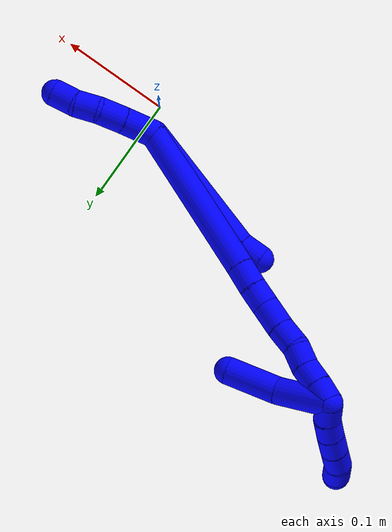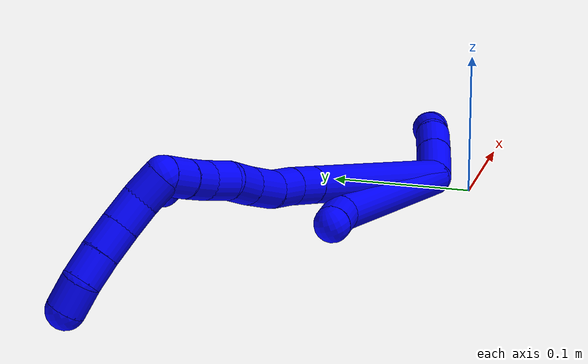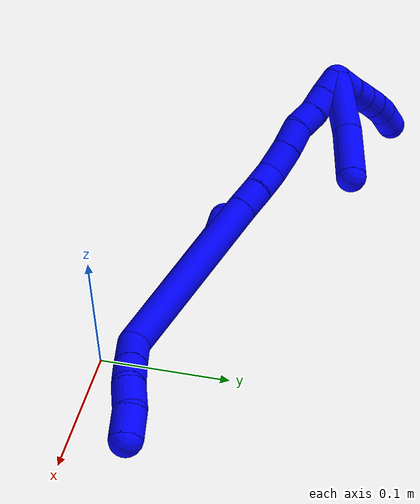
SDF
<sdf version="1.7">
 <world name="default">
  <model name="photoneo_s_sensor">
   <static>1</static>
   <pose>0 0 2 1.57079 1.57079 3.14159</pose>
   <link name="link">
    <inertial><mass>0.1</mass></inertial>
    <sensor name="sensor" type="depth">
     <update_rate>30</update_rate>
     <camera>
      <horizontal_fov>1.22</horizontal_fov>
      <image><width>1920</width><height>1200</height><format>B8G8R8</format></image>
      <clip><near>0.1</near><far>4</far></clip>
      <depth_camera><output>points</output></depth_camera>
     </camera>
     <plugin name="camera_plugin" filename="libgazebo_ros_depth_camera.so">
      <baseline>0.2</baseline>
      <alwaysOn>1</alwaysOn>
      <updateRate>0.0</updateRate>
      <cameraName>camera_ir</cameraName>
      <imageTopicName>/camera/color/image_raw</imageTopicName>
      <cameraInfoTopicName>/camera/color/camera_info</cameraInfoTopicName>
      <depthImageTopicName>/camera/depth/image_raw</depthImageTopicName>
      <depthImageCameraInfoTopicName>/camera/depth/camera_info</depthImageCameraInfoTopicName>
      <pointCloudTopicName>/camera/depth/points</pointCloudTopicName>
      <frameName>fr_optical</frameName>
      <pointCloudCutoff>0.1</pointCloudCutoff>
      <pointCloudCutoffMax>2.0</pointCloudCutoffMax>
      <distortionK1>0</distortionK1>
      <distortionK2>0</distortionK2>
      <distortionK3>0</distortionK3>
      <distortionT1>0</distortionT1>
      <distortionT2>0</distortionT2>
      <CxPrime>0</CxPrime>
      <Cx>0</Cx>
      <Cy>0</Cy>
      <focalLength>0</focalLength>
      <hackBaseline>0</hackBaseline>
     </plugin>
    </sensor>
   </link>
  </model>
  <model name="bin">
   <static>1</static>
   <link name="bottom">
    <collision name="collision-bottom">
     <pose>0 0 -0.01 0 -0 0</pose>
     <geometry><box><size>0.8 0.6 0.02</size></box></geometry>
     <surface>
      <friction><ode><mu>100</mu><mu2>100</mu2></ode></friction>
      <contact><collide_bitmask>65535</collide_bitmask></contact>
     </surface>
    </collision>
   </link>
   <link name="west_wall">
    <collision name="collision-west_wall">
     <pose>-0.41 0 0.1 0 -0 0</pose>
     <geometry><box><size>0.02 0.6 0.2</size></box></geometry>
     <surface>
      <friction><ode><mu>100</mu><mu2>100</mu2></ode></friction>
      <contact><collide_bitmask>65535</collide_bitmask></contact>
     </surface>
    </collision>
   </link>
   <link name="east_wall">
    <collision name="collision-east_wall">
     <pose>0.41 0 0.1 0 -0 0</pose>
     <geometry><box><size>0.02 0.6 0.2</size></box></geometry>
     <surface>
      <friction><ode><mu>100</mu><mu2>100</mu2></ode></friction>
      <contact><collide_bitmask>65535</collide_bitmask></contact>
     </surface>
    </collision>
   </link>
   <link name="south_wall">
    <collision name="collision-south_wall">
     <pose>0 -0.31 0.1 0 -0 0</pose>
     <geometry><box><size>0.8 0.02 0.2</size></box></geometry>
     <surface>
      <friction><ode><mu>100</mu><mu2>100</mu2></ode></friction>
      <contact><collide_bitmask>65535</collide_bitmask></contact>
     </surface>
    </collision>
   </link>
   <link name="north_wall">
    <collision name="collision-north_wall">
     <pose>0 0.31 0.1 0 -0 0</pose>
     <geometry><box><size>0.8 0.02 0.2</size></box></geometry>
     <surface>
      <friction><ode><mu>100</mu><mu2>100</mu2></ode></friction>
      <contact><collide_bitmask>65535</collide_bitmask></contact>
     </surface>
    </collision>
   </link>
  </model>
  <model name="1">
   <static>0</static>
   <link name="1">
    <collision name="collision-cylinder-e_1_2_8">
     <pose>-0.05623 0.02482 0.018319 -0.934977 -1.06902 0.580792</pose>
     <geometry><cylinder><radius>0.0125</radius><length>0.128271</length></cylinder></geometry>
     <surface>
      <friction><ode><mu>1.16</mu><mu2>1.16</mu2><slip1>0</slip1><slip2>0</slip2></ode></friction>
      <contact><ode><kp>1e+06</kp><kd>1</kd><max_vel>0</max_vel><min_depth>0.001</min_depth></ode></contact>
     </surface>
    </collision>
    <visual name="visual-cylinder-e_1_2_8">
     <pose>-0.05623 0.02482 0.018319 -0.934977 -1.06902 0.580792</pose>
     <geometry><cylinder><radius>0.0125</radius><length>0.128271</length></cylinder></geometry>
     <material><ambient>0 0 1 1</ambient></material>
    </visual>
    <collision name="collision-cylinder-e_2_8_6">
     <pose>-0.123139 0.051321 0.037708 -1.00407 -1.38628 0.855611</pose>
     <geometry><cylinder><radius>0.0125</radius><length>0.021729</length></cylinder></geometry>
     <surface>
      <friction><ode><mu>1.16</mu><mu2>1.16</mu2><slip1>0</slip1><slip2>0</slip2></ode></friction>
      <contact><ode><kp>1e+06</kp><kd>1</kd><max_vel>0</max_vel><min_depth>0.001</min_depth></ode></contact>
     </surface>
    </collision>
    <visual name="visual-cylinder-e_2_8_6">
     <pose>-0.123139 0.051321 0.037708 -1.00407 -1.38628 0.855611</pose>
     <geometry><cylinder><radius>0.0125</radius><length>0.021729</length></cylinder></geometry>
     <material><ambient>0 0 1 1</ambient></material>
    </visual>
    <collision name="collision-cylinder-e_1_2_9">
     <pose>0.015596 -0.000876 0.003602 0.238671 1.33741 0.188922</pose>
     <geometry><cylinder><radius>0.0125</radius><length>0.032061</length></cylinder></geometry>
     <surface>
      <friction><ode><mu>1.16</mu><mu2>1.16</mu2><slip1>0</slip1><slip2>0</slip2></ode></friction>
      <contact><ode><kp>1e+06</kp><kd>1</kd><max_vel>0</max_vel><min_depth>0.001</min_depth></ode></contact>
     </surface>
    </collision>
    <visual name="visual-cylinder-e_1_2_9">
     <pose>0.015596 -0.000876 0.003602 0.238671 1.33741 0.188922</pose>
     <geometry><cylinder><radius>0.0125</radius><length>0.032061</length></cylinder></geometry>
     <material><ambient>0 0 1 1</ambient></material>
    </visual>
    <collision name="collision-cylinder-e_2_9_10">
     <pose>0.043027 -0.002033 0.009968 0.101146 1.34032 0.080185</pose>
     <geometry><cylinder><radius>0.0125</radius><length>0.024315</length></cylinder></geometry>
     <surface>
      <friction><ode><mu>1.16</mu><mu2>1.16</mu2><slip1>0</slip1><slip2>0</slip2></ode></friction>
      <contact><ode><kp>1e+06</kp><kd>1</kd><max_vel>0</max_vel><min_depth>0.001</min_depth></ode></contact>
     </surface>
    </collision>
    <visual name="visual-cylinder-e_2_9_10">
     <pose>0.043027 -0.002033 0.009968 0.101146 1.34032 0.080185</pose>
     <geometry><cylinder><radius>0.0125</radius><length>0.024315</length></cylinder></geometry>
     <material><ambient>0 0 1 1</ambient></material>
    </visual>
    <collision name="collision-cylinder-e_3_10_11">
     <pose>0.065346 -0.000481 0.012148 -1.87873 1.38938 -1.70093</pose>
     <geometry><cylinder><radius>0.0125</radius><length>0.021315</length></cylinder></geometry>
     <surface>
      <friction><ode><mu>1.16</mu><mu2>1.16</mu2><slip1>0</slip1><slip2>0</slip2></ode></friction>
      <contact><ode><kp>1e+06</kp><kd>1</kd><max_vel>0</max_vel><min_depth>0.001</min_depth></ode></contact>
     </surface>
    </collision>
    <visual name="visual-cylinder-e_3_10_11">
     <pose>0.065346 -0.000481 0.012148 -1.87873 1.38938 -1.70093</pose>
     <geometry><cylinder><radius>0.0125</radius><length>0.021315</length></cylinder></geometry>
     <material><ambient>0 0 1 1</ambient></material>
    </visual>
    <collision name="collision-cylinder-e_4_11_5">
     <pose>0.086425 0.002075 0.008156 -2.93232 1.25307 -2.85343</pose>
     <geometry><cylinder><radius>0.0125</radius><length>0.022309</length></cylinder></geometry>
     <surface>
      <friction><ode><mu>1.16</mu><mu2>1.16</mu2><slip1>0</slip1><slip2>0</slip2></ode></friction>
      <contact><ode><kp>1e+06</kp><kd>1</kd><max_vel>0</max_vel><min_depth>0.001</min_depth></ode></contact>
     </surface>
    </collision>
    <visual name="visual-cylinder-e_4_11_5">
     <pose>0.086425 0.002075 0.008156 -2.93232 1.25307 -2.85343</pose>
     <geometry><cylinder><radius>0.0125</radius><length>0.022309</length></cylinder></geometry>
     <material><ambient>0 0 1 1</ambient></material>
    </visual>
    <collision name="collision-cylinder-e_1_2_12">
     <pose>-0.059616 0.029356 0.032162 -0.739813 -0.939935 0.388924</pose>
     <geometry><cylinder><radius>0.0125</radius><length>0.147652</length></cylinder></geometry>
     <surface>
      <friction><ode><mu>1.16</mu><mu2>1.16</mu2><slip1>0</slip1><slip2>0</slip2></ode></friction>
      <contact><ode><kp>1e+06</kp><kd>1</kd><max_vel>0</max_vel><min_depth>0.001</min_depth></ode></contact>
     </surface>
    </collision>
    <visual name="visual-cylinder-e_1_2_12">
     <pose>-0.059616 0.029356 0.032162 -0.739813 -0.939935 0.388924</pose>
     <geometry><cylinder><radius>0.0125</radius><length>0.147652</length></cylinder></geometry>
     <material><ambient>0 0 1 1</ambient></material>
    </visual>
    <collision name="collision-cylinder-e_2_12_13">
     <pose>-0.128114 0.063427 0.069219 -0.766669 -0.917715 0.393316</pose>
     <geometry><cylinder><radius>0.0125</radius><length>0.022368</length></cylinder></geometry>
     <surface>
      <friction><ode><mu>1.16</mu><mu2>1.16</mu2><slip1>0</slip1><slip2>0</slip2></ode></friction>
      <contact><ode><kp>1e+06</kp><kd>1</kd><max_vel>0</max_vel><min_depth>0.001</min_depth></ode></contact>
     </surface>
    </collision>
    <visual name="visual-cylinder-e_2_12_13">
     <pose>-0.128114 0.063427 0.069219 -0.766669 -0.917715 0.393316</pose>
     <geometry><cylinder><radius>0.0125</radius><length>0.022368</length></cylinder></geometry>
     <material><ambient>0 0 1 1</ambient></material>
    </visual>
    <collision name="collision-cylinder-e_3_13_14">
     <pose>-0.145639 0.072313 0.078018 -0.818533 -0.986688 0.458265</pose>
     <geometry><cylinder><radius>0.0125</radius><length>0.020721</length></cylinder></geometry>
     <surface>
      <friction><ode><mu>1.16</mu><mu2>1.16</mu2><slip1>0</slip1><slip2>0</slip2></ode></friction>
      <contact><ode><kp>1e+06</kp><kd>1</kd><max_vel>0</max_vel><min_depth>0.001</min_depth></ode></contact>
     </surface>
    </collision>
    <visual name="visual-cylinder-e_3_13_14">
     <pose>-0.145639 0.072313 0.078018 -0.818533 -0.986688 0.458265</pose>
     <geometry><cylinder><radius>0.0125</radius><length>0.020721</length></cylinder></geometry>
     <material><ambient>0 0 1 1</ambient></material>
    </visual>
    <collision name="collision-cylinder-e_4_14_15">
     <pose>-0.16442 0.080578 0.089053 -0.521114 -0.889318 0.252725</pose>
     <geometry><cylinder><radius>0.0125</radius><length>0.026108</length></cylinder></geometry>
     <surface>
      <friction><ode><mu>1.16</mu><mu2>1.16</mu2><slip1>0</slip1><slip2>0</slip2></ode></friction>
      <contact><ode><kp>1e+06</kp><kd>1</kd><max_vel>0</max_vel><min_depth>0.001</min_depth></ode></contact>
     </surface>
    </collision>
    <visual name="visual-cylinder-e_4_14_15">
     <pose>-0.16442 0.080578 0.089053 -0.521114 -0.889318 0.252725</pose>
     <geometry><cylinder><radius>0.0125</radius><length>0.026108</length></cylinder></geometry>
     <material><ambient>0 0 1 1</ambient></material>
    </visual>
    <collision name="collision-cylinder-e_5_15_16">
     <pose>-0.183636 0.087219 0.102648 -0.375352 -0.917586 0.187064</pose>
     <geometry><cylinder><radius>0.0125</radius><length>0.02286</length></cylinder></geometry>
     <surface>
      <friction><ode><mu>1.16</mu><mu2>1.16</mu2><slip1>0</slip1><slip2>0</slip2></ode></friction>
      <contact><ode><kp>1e+06</kp><kd>1</kd><max_vel>0</max_vel><min_depth>0.001</min_depth></ode></contact>
     </surface>
    </collision>
    <visual name="visual-cylinder-e_5_15_16">
     <pose>-0.183636 0.087219 0.102648 -0.375352 -0.917586 0.187064</pose>
     <geometry><cylinder><radius>0.0125</radius><length>0.02286</length></cylinder></geometry>
     <material><ambient>0 0 1 1</ambient></material>
    </visual>
    <collision name="collision-cylinder-e_6_16_17">
     <pose>-0.199923 0.09488 0.114003 -0.807599 -0.794699 0.354863</pose>
     <geometry><cylinder><radius>0.0125</radius><length>0.020206</length></cylinder></geometry>
     <surface>
      <friction><ode><mu>1.16</mu><mu2>1.16</mu2><slip1>0</slip1><slip2>0</slip2></ode></friction>
      <contact><ode><kp>1e+06</kp><kd>1</kd><max_vel>0</max_vel><min_depth>0.001</min_depth></ode></contact>
     </surface>
    </collision>
    <visual name="visual-cylinder-e_6_16_17">
     <pose>-0.199923 0.09488 0.114003 -0.807599 -0.794699 0.354863</pose>
     <geometry><cylinder><radius>0.0125</radius><length>0.020206</length></cylinder></geometry>
     <material><ambient>0 0 1 1</ambient></material>
    </visual>
    <collision name="collision-cylinder-e_7_17_18">
     <pose>-0.215222 0.103104 0.123966 -0.550211 -0.93668 0.283664</pose>
     <geometry><cylinder><radius>0.0125</radius><length>0.020081</length></cylinder></geometry>
     <surface>
      <friction><ode><mu>1.16</mu><mu2>1.16</mu2><slip1>0</slip1><slip2>0</slip2></ode></friction>
      <contact><ode><kp>1e+06</kp><kd>1</kd><max_vel>0</max_vel><min_depth>0.001</min_depth></ode></contact>
     </surface>
    </collision>
    <visual name="visual-cylinder-e_7_17_18">
     <pose>-0.215222 0.103104 0.123966 -0.550211 -0.93668 0.283664</pose>
     <geometry><cylinder><radius>0.0125</radius><length>0.020081</length></cylinder></geometry>
     <material><ambient>0 0 1 1</ambient></material>
    </visual>
    <collision name="collision-cylinder-e_8_18_1">
     <pose>-0.230894 0.109758 0.134512 -0.57437 -0.860528 0.269454</pose>
     <geometry><cylinder><radius>0.0125</radius><length>0.020004</length></cylinder></geometry>
     <surface>
      <friction><ode><mu>1.16</mu><mu2>1.16</mu2><slip1>0</slip1><slip2>0</slip2></ode></friction>
      <contact><ode><kp>1e+06</kp><kd>1</kd><max_vel>0</max_vel><min_depth>0.001</min_depth></ode></contact>
     </surface>
    </collision>
    <visual name="visual-cylinder-e_8_18_1">
     <pose>-0.230894 0.109758 0.134512 -0.57437 -0.860528 0.269454</pose>
     <geometry><cylinder><radius>0.0125</radius><length>0.020004</length></cylinder></geometry>
     <material><ambient>0 0 1 1</ambient></material>
    </visual>
    <collision name="collision-cylinder-e_1_1_19">
     <pose>-0.241181 0.122061 0.135994 -1.99848 -0.273839 0.422067</pose>
     <geometry><cylinder><radius>0.0125</radius><length>0.02</length></cylinder></geometry>
     <surface>
      <friction><ode><mu>1.16</mu><mu2>1.16</mu2><slip1>0</slip1><slip2>0</slip2></ode></friction>
      <contact><ode><kp>1e+06</kp><kd>1</kd><max_vel>0</max_vel><min_depth>0.001</min_depth></ode></contact>
     </surface>
    </collision>
    <visual name="visual-cylinder-e_1_1_19">
     <pose>-0.241181 0.122061 0.135994 -1.99848 -0.273839 0.422067</pose>
     <geometry><cylinder><radius>0.0125</radius><length>0.02</length></cylinder></geometry>
     <material><ambient>0 0 1 1</ambient></material>
    </visual>
    <collision name="collision-cylinder-e_2_19_20">
     <pose>-0.2487 0.138567 0.127899 -2.05785 -0.502346 0.805855</pose>
     <geometry><cylinder><radius>0.0125</radius><length>0.02</length></cylinder></geometry>
     <surface>
      <friction><ode><mu>1.16</mu><mu2>1.16</mu2><slip1>0</slip1><slip2>0</slip2></ode></friction>
      <contact><ode><kp>1e+06</kp><kd>1</kd><max_vel>0</max_vel><min_depth>0.001</min_depth></ode></contact>
     </surface>
    </collision>
    <visual name="visual-cylinder-e_2_19_20">
     <pose>-0.2487 0.138567 0.127899 -2.05785 -0.502346 0.805855</pose>
     <geometry><cylinder><radius>0.0125</radius><length>0.02</length></cylinder></geometry>
     <material><ambient>0 0 1 1</ambient></material>
    </visual>
    <collision name="collision-cylinder-e_3_20_21">
     <pose>-0.258537 0.153832 0.119527 -2.0872 -0.526125 0.866557</pose>
     <geometry><cylinder><radius>0.0125</radius><length>0.02</length></cylinder></geometry>
     <surface>
      <friction><ode><mu>1.16</mu><mu2>1.16</mu2><slip1>0</slip1><slip2>0</slip2></ode></friction>
      <contact><ode><kp>1e+06</kp><kd>1</kd><max_vel>0</max_vel><min_depth>0.001</min_depth></ode></contact>
     </surface>
    </collision>
    <visual name="visual-cylinder-e_3_20_21">
     <pose>-0.258537 0.153832 0.119527 -2.0872 -0.526125 0.866557</pose>
     <geometry><cylinder><radius>0.0125</radius><length>0.02</length></cylinder></geometry>
     <material><ambient>0 0 1 1</ambient></material>
    </visual>
    <collision name="collision-cylinder-e_4_21_22">
     <pose>-0.268378 0.168673 0.110442 -2.15258 -0.502774 0.88903</pose>
     <geometry><cylinder><radius>0.0125</radius><length>0.02</length></cylinder></geometry>
     <surface>
      <friction><ode><mu>1.16</mu><mu2>1.16</mu2><slip1>0</slip1><slip2>0</slip2></ode></friction>
      <contact><ode><kp>1e+06</kp><kd>1</kd><max_vel>0</max_vel><min_depth>0.001</min_depth></ode></contact>
     </surface>
    </collision>
    <visual name="visual-cylinder-e_4_21_22">
     <pose>-0.268378 0.168673 0.110442 -2.15258 -0.502774 0.88903</pose>
     <geometry><cylinder><radius>0.0125</radius><length>0.02</length></cylinder></geometry>
     <material><ambient>0 0 1 1</ambient></material>
    </visual>
    <collision name="collision-cylinder-e_5_22_4">
     <pose>-0.275321 0.183594 0.099484 -2.25054 -0.214144 0.442769</pose>
     <geometry><cylinder><radius>0.0125</radius><length>0.02</length></cylinder></geometry>
     <surface>
      <friction><ode><mu>1.16</mu><mu2>1.16</mu2><slip1>0</slip1><slip2>0</slip2></ode></friction>
      <contact><ode><kp>1e+06</kp><kd>1</kd><max_vel>0</max_vel><min_depth>0.001</min_depth></ode></contact>
     </surface>
    </collision>
    <visual name="visual-cylinder-e_5_22_4">
     <pose>-0.275321 0.183594 0.099484 -2.25054 -0.214144 0.442769</pose>
     <geometry><cylinder><radius>0.0125</radius><length>0.02</length></cylinder></geometry>
     <material><ambient>0 0 1 1</ambient></material>
    </visual>
    <collision name="collision-cylinder-e_1_1_23">
     <pose>-0.216405 0.121929 0.129989 -2.42964 1.03161 -1.98077</pose>
     <geometry><cylinder><radius>0.0125</radius><length>0.051441</length></cylinder></geometry>
     <surface>
      <friction><ode><mu>1.16</mu><mu2>1.16</mu2><slip1>0</slip1><slip2>0</slip2></ode></friction>
      <contact><ode><kp>1e+06</kp><kd>1</kd><max_vel>0</max_vel><min_depth>0.001</min_depth></ode></contact>
     </surface>
    </collision>
    <visual name="visual-cylinder-e_1_1_23">
     <pose>-0.216405 0.121929 0.129989 -2.42964 1.03161 -1.98077</pose>
     <geometry><cylinder><radius>0.0125</radius><length>0.051441</length></cylinder></geometry>
     <material><ambient>0 0 1 1</ambient></material>
    </visual>
    <collision name="collision-cylinder-e_2_23_3">
     <pose>-0.170884 0.133771 0.114584 -2.60526 1.30872 -2.45366</pose>
     <geometry><cylinder><radius>0.0125</radius><length>0.048559</length></cylinder></geometry>
     <surface>
      <friction><ode><mu>1.16</mu><mu2>1.16</mu2><slip1>0</slip1><slip2>0</slip2></ode></friction>
      <contact><ode><kp>1e+06</kp><kd>1</kd><max_vel>0</max_vel><min_depth>0.001</min_depth></ode></contact>
     </surface>
    </collision>
    <visual name="visual-cylinder-e_2_23_3">
     <pose>-0.170884 0.133771 0.114584 -2.60526 1.30872 -2.45366</pose>
     <geometry><cylinder><radius>0.0125</radius><length>0.048559</length></cylinder></geometry>
     <material><ambient>0 0 1 1</ambient></material>
    </visual>
    <collision name="collision-sphere-3">
     <pose>-0.147433 0.136985 0.109176 0 -0 0</pose>
     <geometry><sphere><radius>0.0125</radius></sphere></geometry>
     <surface>
      <friction><ode><mu>1.16</mu><mu2>1.16</mu2><slip1>0</slip1><slip2>0</slip2></ode></friction>
      <contact><ode><kp>1e+06</kp><kd>1</kd><max_vel>0</max_vel><min_depth>0.001</min_depth></ode></contact>
     </surface>
    </collision>
    <visual name="visual-sphere-3">
     <pose>-0.147433 0.136985 0.109176 0 -0 0</pose>
     <geometry><sphere><radius>0.0125</radius></sphere></geometry>
     <material><ambient>0 0 1 1</ambient></material>
    </visual>
    <collision name="collision-sphere-23">
     <pose>-0.194334 0.130557 0.119991 0 -0 0</pose>
     <geometry><sphere><radius>0.0125</radius></sphere></geometry>
     <surface>
      <friction><ode><mu>1.16</mu><mu2>1.16</mu2><slip1>0</slip1><slip2>0</slip2></ode></friction>
      <contact><ode><kp>1e+06</kp><kd>1</kd><max_vel>0</max_vel><min_depth>0.001</min_depth></ode></contact>
     </surface>
    </collision>
    <visual name="visual-sphere-23">
     <pose>-0.194334 0.130557 0.119991 0 -0 0</pose>
     <geometry><sphere><radius>0.0125</radius></sphere></geometry>
     <material><ambient>0 0 1 1</ambient></material>
    </visual>
    <collision name="collision-sphere-4">
     <pose>-0.277446 0.191194 0.093342 0 -0 0</pose>
     <geometry><sphere><radius>0.0125</radius></sphere></geometry>
     <surface>
      <friction><ode><mu>1.16</mu><mu2>1.16</mu2><slip1>0</slip1><slip2>0</slip2></ode></friction>
      <contact><ode><kp>1e+06</kp><kd>1</kd><max_vel>0</max_vel><min_depth>0.001</min_depth></ode></contact>
     </surface>
    </collision>
    <visual name="visual-sphere-4">
     <pose>-0.277446 0.191194 0.093342 0 -0 0</pose>
     <geometry><sphere><radius>0.0125</radius></sphere></geometry>
     <material><ambient>0 0 1 1</ambient></material>
    </visual>
    <collision name="collision-sphere-22">
     <pose>-0.273196 0.175994 0.105627 0 -0 0</pose>
     <geometry><sphere><radius>0.0125</radius></sphere></geometry>
     <surface>
      <friction><ode><mu>1.16</mu><mu2>1.16</mu2><slip1>0</slip1><slip2>0</slip2></ode></friction>
      <contact><ode><kp>1e+06</kp><kd>1</kd><max_vel>0</max_vel><min_depth>0.001</min_depth></ode></contact>
     </surface>
    </collision>
    <visual name="visual-sphere-22">
     <pose>-0.273196 0.175994 0.105627 0 -0 0</pose>
     <geometry><sphere><radius>0.0125</radius></sphere></geometry>
     <material><ambient>0 0 1 1</ambient></material>
    </visual>
    <collision name="collision-sphere-21">
     <pose>-0.263559 0.161352 0.115257 0 -0 0</pose>
     <geometry><sphere><radius>0.0125</radius></sphere></geometry>
     <surface>
      <friction><ode><mu>1.16</mu><mu2>1.16</mu2><slip1>0</slip1><slip2>0</slip2></ode></friction>
      <contact><ode><kp>1e+06</kp><kd>1</kd><max_vel>0</max_vel><min_depth>0.001</min_depth></ode></contact>
     </surface>
    </collision>
    <visual name="visual-sphere-21">
     <pose>-0.263559 0.161352 0.115257 0 -0 0</pose>
     <geometry><sphere><radius>0.0125</radius></sphere></geometry>
     <material><ambient>0 0 1 1</ambient></material>
    </visual>
    <collision name="collision-sphere-20">
     <pose>-0.253515 0.146312 0.123797 0 -0 0</pose>
     <geometry><sphere><radius>0.0125</radius></sphere></geometry>
     <surface>
      <friction><ode><mu>1.16</mu><mu2>1.16</mu2><slip1>0</slip1><slip2>0</slip2></ode></friction>
      <contact><ode><kp>1e+06</kp><kd>1</kd><max_vel>0</max_vel><min_depth>0.001</min_depth></ode></contact>
     </surface>
    </collision>
    <visual name="visual-sphere-20">
     <pose>-0.253515 0.146312 0.123797 0 -0 0</pose>
     <geometry><sphere><radius>0.0125</radius></sphere></geometry>
     <material><ambient>0 0 1 1</ambient></material>
    </visual>
    <collision name="collision-sphere-11">
     <pose>0.075829 0.001351 0.011565 0 -0 0</pose>
     <geometry><sphere><radius>0.0125</radius></sphere></geometry>
     <surface>
      <friction><ode><mu>1.16</mu><mu2>1.16</mu2><slip1>0</slip1><slip2>0</slip2></ode></friction>
      <contact><ode><kp>1e+06</kp><kd>1</kd><max_vel>0</max_vel><min_depth>0.001</min_depth></ode></contact>
     </surface>
    </collision>
    <visual name="visual-sphere-11">
     <pose>0.075829 0.001351 0.011565 0 -0 0</pose>
     <geometry><sphere><radius>0.0125</radius></sphere></geometry>
     <material><ambient>0 0 1 1</ambient></material>
    </visual>
    <collision name="collision-sphere-10">
     <pose>0.054863 -0.002314 0.012731 0 -0 0</pose>
     <geometry><sphere><radius>0.0125</radius></sphere></geometry>
     <surface>
      <friction><ode><mu>1.16</mu><mu2>1.16</mu2><slip1>0</slip1><slip2>0</slip2></ode></friction>
      <contact><ode><kp>1e+06</kp><kd>1</kd><max_vel>0</max_vel><min_depth>0.001</min_depth></ode></contact>
     </surface>
    </collision>
    <visual name="visual-sphere-10">
     <pose>0.054863 -0.002314 0.012731 0 -0 0</pose>
     <geometry><sphere><radius>0.0125</radius></sphere></geometry>
     <material><ambient>0 0 1 1</ambient></material>
    </visual>
    <collision name="collision-sphere-6">
     <pose>-0.133819 0.053003 0.038778 0 -0 0</pose>
     <geometry><sphere><radius>0.0125</radius></sphere></geometry>
     <surface>
      <friction><ode><mu>1.16</mu><mu2>1.16</mu2><slip1>0</slip1><slip2>0</slip2></ode></friction>
      <contact><ode><kp>1e+06</kp><kd>1</kd><max_vel>0</max_vel><min_depth>0.001</min_depth></ode></contact>
     </surface>
    </collision>
    <visual name="visual-sphere-6">
     <pose>-0.133819 0.053003 0.038778 0 -0 0</pose>
     <geometry><sphere><radius>0.0125</radius></sphere></geometry>
     <material><ambient>0 0 1 1</ambient></material>
    </visual>
    <collision name="collision-sphere-9">
     <pose>0.031192 -0.001753 0.007205 0 -0 0</pose>
     <geometry><sphere><radius>0.0125</radius></sphere></geometry>
     <surface>
      <friction><ode><mu>1.16</mu><mu2>1.16</mu2><slip1>0</slip1><slip2>0</slip2></ode></friction>
      <contact><ode><kp>1e+06</kp><kd>1</kd><max_vel>0</max_vel><min_depth>0.001</min_depth></ode></contact>
     </surface>
    </collision>
    <visual name="visual-sphere-9">
     <pose>0.031192 -0.001753 0.007205 0 -0 0</pose>
     <geometry><sphere><radius>0.0125</radius></sphere></geometry>
     <material><ambient>0 0 1 1</ambient></material>
    </visual>
    <collision name="collision-sphere-2">
     <geometry><sphere><radius>0.0125</radius></sphere></geometry>
     <surface>
      <friction><ode><mu>1.16</mu><mu2>1.16</mu2><slip1>0</slip1><slip2>0</slip2></ode></friction>
      <contact><ode><kp>1e+06</kp><kd>1</kd><max_vel>0</max_vel><min_depth>0.001</min_depth></ode></contact>
     </surface>
    </collision>
    <visual name="visual-sphere-2">
     <geometry><sphere><radius>0.0125</radius></sphere></geometry>
     <material><ambient>0 0 1 1</ambient></material>
    </visual>
    <collision name="collision-sphere-19">
     <pose>-0.243886 0.130822 0.132001 0 -0 0</pose>
     <geometry><sphere><radius>0.0125</radius></sphere></geometry>
     <surface>
      <friction><ode><mu>1.16</mu><mu2>1.16</mu2><slip1>0</slip1><slip2>0</slip2></ode></friction>
      <contact><ode><kp>1e+06</kp><kd>1</kd><max_vel>0</max_vel><min_depth>0.001</min_depth></ode></contact>
     </surface>
    </collision>
    <visual name="visual-sphere-19">
     <pose>-0.243886 0.130822 0.132001 0 -0 0</pose>
     <geometry><sphere><radius>0.0125</radius></sphere></geometry>
     <material><ambient>0 0 1 1</ambient></material>
    </visual>
    <collision name="collision-sphere-8">
     <pose>-0.112459 0.04964 0.036637 0 -0 0</pose>
     <geometry><sphere><radius>0.0125</radius></sphere></geometry>
     <surface>
      <friction><ode><mu>1.16</mu><mu2>1.16</mu2><slip1>0</slip1><slip2>0</slip2></ode></friction>
      <contact><ode><kp>1e+06</kp><kd>1</kd><max_vel>0</max_vel><min_depth>0.001</min_depth></ode></contact>
     </surface>
    </collision>
    <visual name="visual-sphere-8">
     <pose>-0.112459 0.04964 0.036637 0 -0 0</pose>
     <geometry><sphere><radius>0.0125</radius></sphere></geometry>
     <material><ambient>0 0 1 1</ambient></material>
    </visual>
    <collision name="collision-sphere-5">
     <pose>0.097021 0.002799 0.004748 0 -0 0</pose>
     <geometry><sphere><radius>0.0125</radius></sphere></geometry>
     <surface>
      <friction><ode><mu>1.16</mu><mu2>1.16</mu2><slip1>0</slip1><slip2>0</slip2></ode></friction>
      <contact><ode><kp>1e+06</kp><kd>1</kd><max_vel>0</max_vel><min_depth>0.001</min_depth></ode></contact>
     </surface>
    </collision>
    <visual name="visual-sphere-5">
     <pose>0.097021 0.002799 0.004748 0 -0 0</pose>
     <geometry><sphere><radius>0.0125</radius></sphere></geometry>
     <material><ambient>0 0 1 1</ambient></material>
    </visual>
    <collision name="collision-sphere-12">
     <pose>-0.119232 0.058712 0.064325 0 -0 0</pose>
     <geometry><sphere><radius>0.0125</radius></sphere></geometry>
     <surface>
      <friction><ode><mu>1.16</mu><mu2>1.16</mu2><slip1>0</slip1><slip2>0</slip2></ode></friction>
      <contact><ode><kp>1e+06</kp><kd>1</kd><max_vel>0</max_vel><min_depth>0.001</min_depth></ode></contact>
     </surface>
    </collision>
    <visual name="visual-sphere-12">
     <pose>-0.119232 0.058712 0.064325 0 -0 0</pose>
     <geometry><sphere><radius>0.0125</radius></sphere></geometry>
     <material><ambient>0 0 1 1</ambient></material>
    </visual>
    <collision name="collision-sphere-13">
     <pose>-0.136997 0.068141 0.074114 0 -0 0</pose>
     <geometry><sphere><radius>0.0125</radius></sphere></geometry>
     <surface>
      <friction><ode><mu>1.16</mu><mu2>1.16</mu2><slip1>0</slip1><slip2>0</slip2></ode></friction>
      <contact><ode><kp>1e+06</kp><kd>1</kd><max_vel>0</max_vel><min_depth>0.001</min_depth></ode></contact>
     </surface>
    </collision>
    <visual name="visual-sphere-13">
     <pose>-0.136997 0.068141 0.074114 0 -0 0</pose>
     <geometry><sphere><radius>0.0125</radius></sphere></geometry>
     <material><ambient>0 0 1 1</ambient></material>
    </visual>
    <collision name="collision-sphere-14">
     <pose>-0.154282 0.076484 0.081922 0 -0 0</pose>
     <geometry><sphere><radius>0.0125</radius></sphere></geometry>
     <surface>
      <friction><ode><mu>1.16</mu><mu2>1.16</mu2><slip1>0</slip1><slip2>0</slip2></ode></friction>
      <contact><ode><kp>1e+06</kp><kd>1</kd><max_vel>0</max_vel><min_depth>0.001</min_depth></ode></contact>
     </surface>
    </collision>
    <visual name="visual-sphere-14">
     <pose>-0.154282 0.076484 0.081922 0 -0 0</pose>
     <geometry><sphere><radius>0.0125</radius></sphere></geometry>
     <material><ambient>0 0 1 1</ambient></material>
    </visual>
    <collision name="collision-sphere-15">
     <pose>-0.174559 0.084672 0.096185 0 -0 0</pose>
     <geometry><sphere><radius>0.0125</radius></sphere></geometry>
     <surface>
      <friction><ode><mu>1.16</mu><mu2>1.16</mu2><slip1>0</slip1><slip2>0</slip2></ode></friction>
      <contact><ode><kp>1e+06</kp><kd>1</kd><max_vel>0</max_vel><min_depth>0.001</min_depth></ode></contact>
     </surface>
    </collision>
    <visual name="visual-sphere-15">
     <pose>-0.174559 0.084672 0.096185 0 -0 0</pose>
     <geometry><sphere><radius>0.0125</radius></sphere></geometry>
     <material><ambient>0 0 1 1</ambient></material>
    </visual>
    <collision name="collision-sphere-16">
     <pose>-0.192713 0.089766 0.109111 0 -0 0</pose>
     <geometry><sphere><radius>0.0125</radius></sphere></geometry>
     <surface>
      <friction><ode><mu>1.16</mu><mu2>1.16</mu2><slip1>0</slip1><slip2>0</slip2></ode></friction>
      <contact><ode><kp>1e+06</kp><kd>1</kd><max_vel>0</max_vel><min_depth>0.001</min_depth></ode></contact>
     </surface>
    </collision>
    <visual name="visual-sphere-16">
     <pose>-0.192713 0.089766 0.109111 0 -0 0</pose>
     <geometry><sphere><radius>0.0125</radius></sphere></geometry>
     <material><ambient>0 0 1 1</ambient></material>
    </visual>
    <collision name="collision-sphere-17">
     <pose>-0.207133 0.099994 0.118895 0 -0 0</pose>
     <geometry><sphere><radius>0.0125</radius></sphere></geometry>
     <surface>
      <friction><ode><mu>1.16</mu><mu2>1.16</mu2><slip1>0</slip1><slip2>0</slip2></ode></friction>
      <contact><ode><kp>1e+06</kp><kd>1</kd><max_vel>0</max_vel><min_depth>0.001</min_depth></ode></contact>
     </surface>
    </collision>
    <visual name="visual-sphere-17">
     <pose>-0.207133 0.099994 0.118895 0 -0 0</pose>
     <geometry><sphere><radius>0.0125</radius></sphere></geometry>
     <material><ambient>0 0 1 1</ambient></material>
    </visual>
    <collision name="collision-sphere-18">
     <pose>-0.22331 0.106215 0.129037 0 -0 0</pose>
     <geometry><sphere><radius>0.0125</radius></sphere></geometry>
     <surface>
      <friction><ode><mu>1.16</mu><mu2>1.16</mu2><slip1>0</slip1><slip2>0</slip2></ode></friction>
      <contact><ode><kp>1e+06</kp><kd>1</kd><max_vel>0</max_vel><min_depth>0.001</min_depth></ode></contact>
     </surface>
    </collision>
    <visual name="visual-sphere-18">
     <pose>-0.22331 0.106215 0.129037 0 -0 0</pose>
     <geometry><sphere><radius>0.0125</radius></sphere></geometry>
     <material><ambient>0 0 1 1</ambient></material>
    </visual>
    <collision name="collision-sphere-1">
     <pose>-0.238477 0.113301 0.139987 0 -0 0</pose>
     <geometry><sphere><radius>0.0125</radius></sphere></geometry>
     <surface>
      <friction><ode><mu>1.16</mu><mu2>1.16</mu2><slip1>0</slip1><slip2>0</slip2></ode></friction>
      <contact><ode><kp>1e+06</kp><kd>1</kd><max_vel>0</max_vel><min_depth>0.001</min_depth></ode></contact>
     </surface>
    </collision>
    <visual name="visual-sphere-1">
     <pose>-0.238477 0.113301 0.139987 0 -0 0</pose>
     <geometry><sphere><radius>0.0125</radius></sphere></geometry>
     <material><ambient>0 0 1 1</ambient></material>
    </visual>
    <inertial>
     <pose>-0.115267 0.066523 0.064206 0 -0 0</pose>
     <mass>0.75</mass>
     <inertia>
      <ixx>0.00032</ixx>
      <ixy>0</ixy>
      <ixz>0</ixz>
      <iyy>0.000575</iyy>
      <iyz>0</iyz>
      <izz>0.000175</izz>
     </inertia>
    </inertial>
   </link>
   <pose>-0.010982 0.023612 0.01185 -0.383411 -0.054097 0.187583</pose>
  </model>
 </world>
</sdf>
